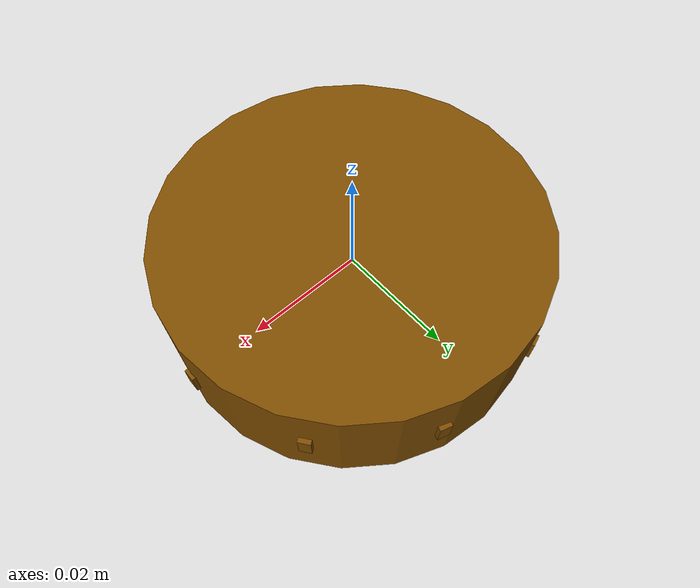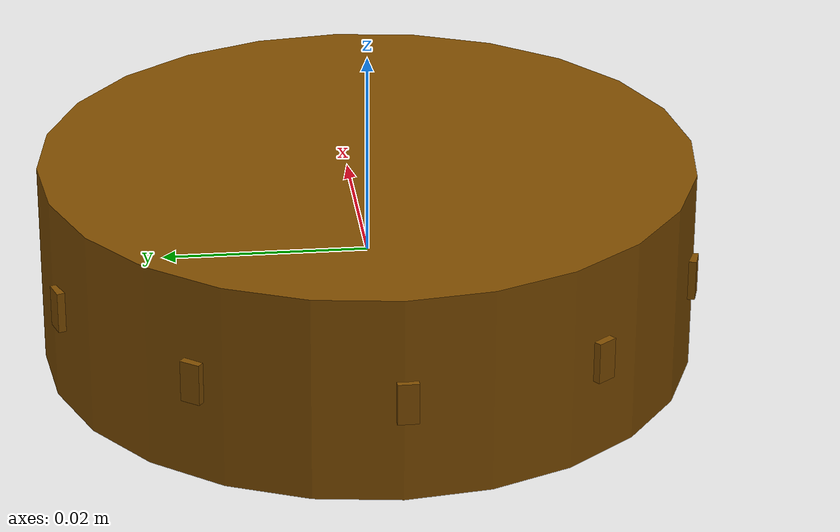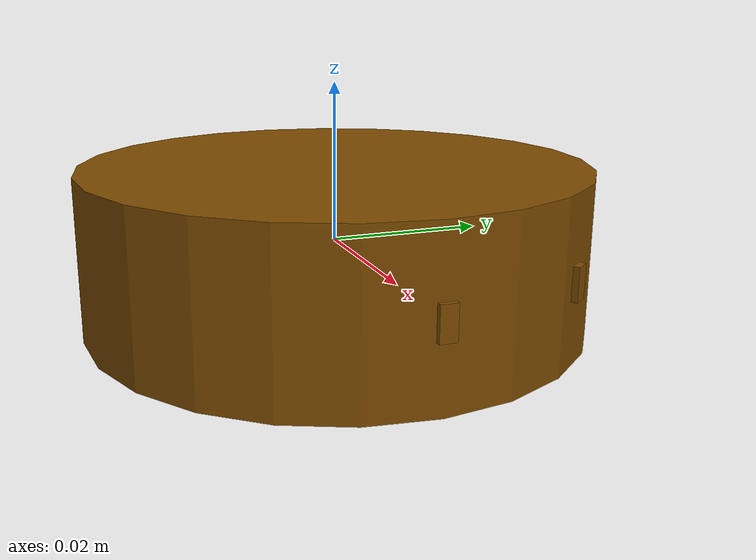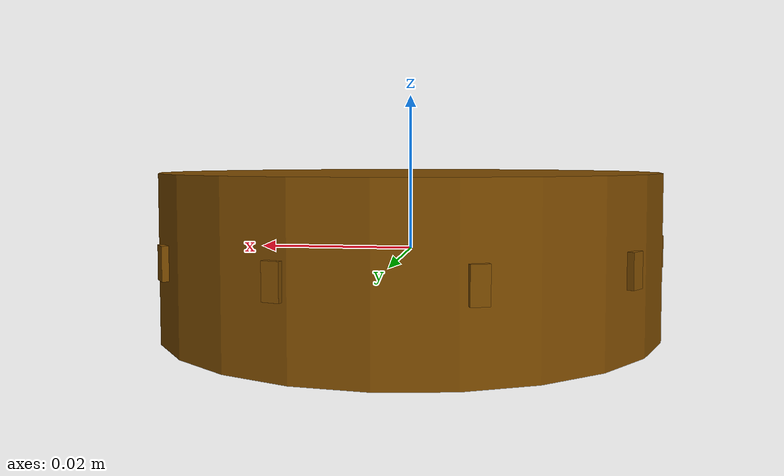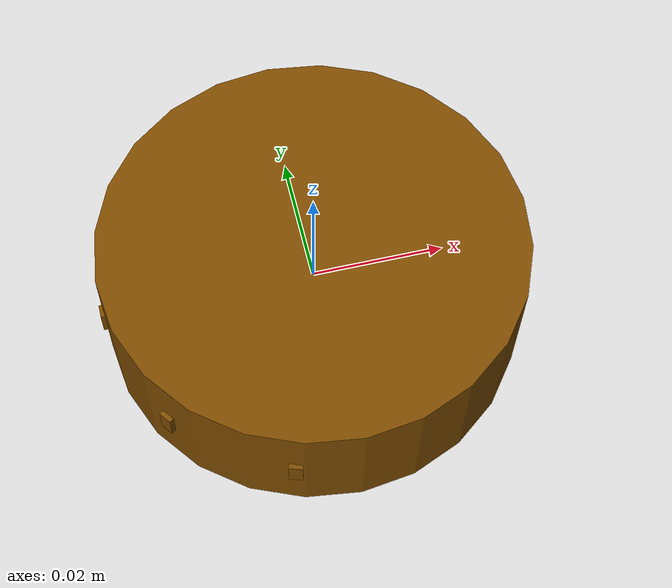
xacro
<?xml version="1.0" ?>
<robot xmlns:xacro="http://wiki.ros.org/xacro" name="dlidar_gazebo">
  <!-- Include other files -->
  <xacro:include filename="$(find ur_dlidar_gazebo)/urdf/ur3e_dlidar/dlidar.urdf.xacro"/>
  <!-- Pre-defined parameters -->
  <xacro:property name="d2r" value="0.0175"/>
  <xacro:property name="rad" value="0.031783"/>
  <xacro:property name="het" value="0.02"/>

  <!-- World link -->
  <link name="dlidar_base"/>
  <joint name ="base_joint" type="fixed">
    <parent link="dlidar_base"/>
    <child link="dlidar_base_inertia"/>
  </joint>
  <!-- Base link with inertia-->
  <link name="dlidar_base_inertia">
    <!-- Visual -->
    <visual>
      <geometry>
        <cylinder radius="${rad}" length="${het}"/>
      </geometry>
      <origin xyz="0.0 0.0 0.0" rpy="0.0 0.0 0.0" />
      <material name="black">
          <color rgba="0.5 0.3 0.0 1" />
      </material>
    </visual>
    <!-- Collision -->
    <collision>
      <geometry>
        <cylinder radius="${rad}" length="${het}"/>
      </geometry>
    </collision>
    <!-- Interial -->
    <inertial>
      <origin xyz="0 0 0" />
      <mass value="0.001" />
      <inertia ixx="1" ixy="0" ixz="0" iyy="1" iyz="0" izz="1" />
    </inertial>
  </link>

  <!-- Sensor Links -->
  <xacro:dlidar_macro i="0"/>
  <xacro:dlidar_macro i="1"/>
  <xacro:dlidar_macro i="2"/>
  <xacro:dlidar_macro i="3"/>
  <xacro:dlidar_macro i="4"/>
  <xacro:dlidar_macro i="5"/>
  <xacro:dlidar_macro i="6"/>
  <xacro:dlidar_macro i="7"/>
 </robot>

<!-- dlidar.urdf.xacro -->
<robot xmlns:xacro="http://wiki.ros.org/xacro">
  <!-- Macro definition -->
  <xacro:macro name="dlidar_macro" params="i">
   <!-- Sensor link -->
  <link name="dlidar${i}">
    <!-- Visual -->
    <visual>
      <geometry>
        <box size="0.001 0.002 0.004"/>
      </geometry>
      <origin xyz="0 0 0" rpy="0 0 0"/>
      <material name="yellow">
          <color rgba="0.5 0.3 0.0 1" />
      </material>
    </visual>
    <!-- Collision -->
    <collision>
      <geometry>
        <box size="0.001 0.002 0.004"/>
      </geometry>
      <origin xyz="0 0 0" rpy="0 0 0"/>
    </collision>
    <!-- Interial -->
    <inertial>
      <origin xyz="0 0 0" />
      <mass value="0.001" />
      <inertia ixx="1" ixy="0" ixz="0" iyy="1" iyz="0" izz="1" />
    </inertial>
  </link>

  <!-- Sensor Joint -->
  <joint name ="dlidar${i}_joints" type="fixed">
    <parent link="dlidar_base_inertia"/>
    <child link="dlidar${i}"/>
    <origin xyz="${rad*cos(36*d2r*i)} ${rad*sin(36*d2r*i)} 0" rpy="0 0 ${36*d2r*i}"/>
  </joint>

  <!-- Make sure not be merged -->
  <gazebo reference="dlidar${i}_joints">
    <preserveFixedJoint>true</preserveFixedJoint>
  </gazebo>

  <!-- Sensor plugin -->
  <gazebo reference="dlidar${i}">
    <sensor type="ray" name="dlidar${i}_ray">
      <pose>0 0 0 0 0 0</pose>
      <visualize>true</visualize>         <!-- 是否可视化射线 -->
      <update_rate>10</update_rate>       <!-- 测距频率 -->
      <ray>
        <scan>
          <horizontal>   <!-- 水平方向 -->
            <samples>10</samples>
            <resolution>1</resolution>
            <min_angle>-${15*d2r}</min_angle>  <!-- 角度范围最小值 -15度 -->
            <max_angle>${15*d2r}</max_angle>   <!-- 角度范围最大值 15度 -->
          </horizontal>
          <vertical>     <!-- 垂直方向 参数同上-->
            <samples>10</samples>
            <resolution>1</resolution>
            <min_angle>-${15*d2r}</min_angle>
            <max_angle>${15*d2r}</max_angle>
          </vertical>
        </scan>
        <range>
          <min>0.02</min>     <!-- 最小测距范围-->
          <max>1.0</max>     <!-- 最大测距范围-->
          <resolution>0.02</resolution>
        </range>
      </ray>
      <plugin filename="libgazebo_ros_range.so" name="gazebo_ros_range${i}">
        <gaussianNoise>0.001</gaussianNoise>   <!-- 添加传感器噪声 -->
        <alwaysOn>true</alwaysOn>
        <updateRate>10</updateRate>
        <topicName>dlidar_data</topicName>        <!-- 发布数据的 Topic 名称 -->
        <frameName>dlidar${i}</frameName>   <!-- 对应的frame 名字 -->
        <radiation>ultrasound</radiation>
        <fov>0.536</fov>
      </plugin>
    </sensor>
  </gazebo>
  </xacro:macro>
</robot>
